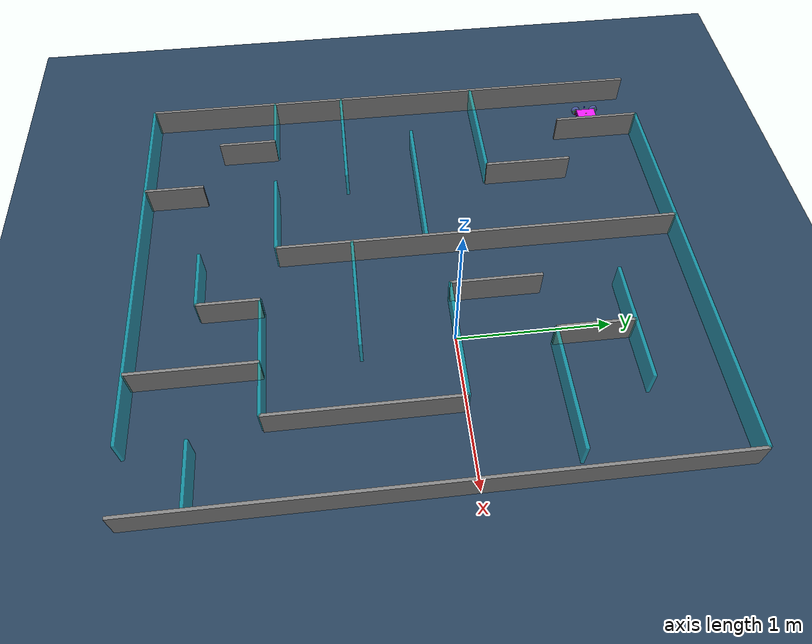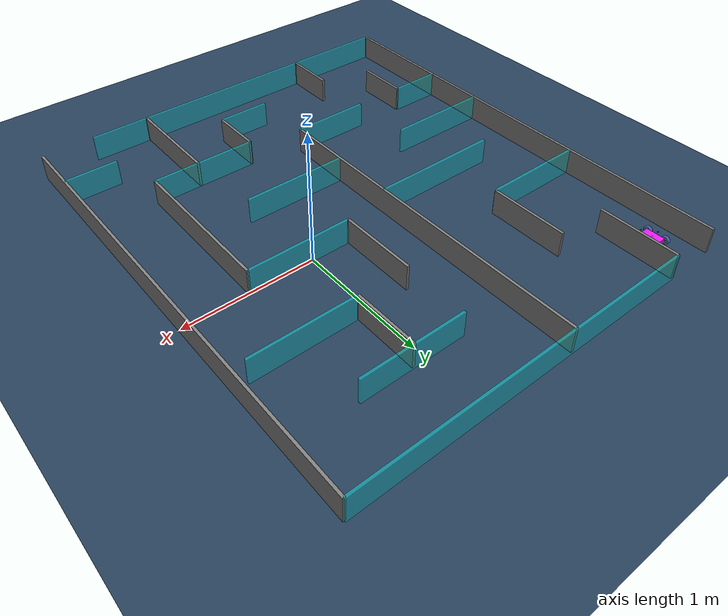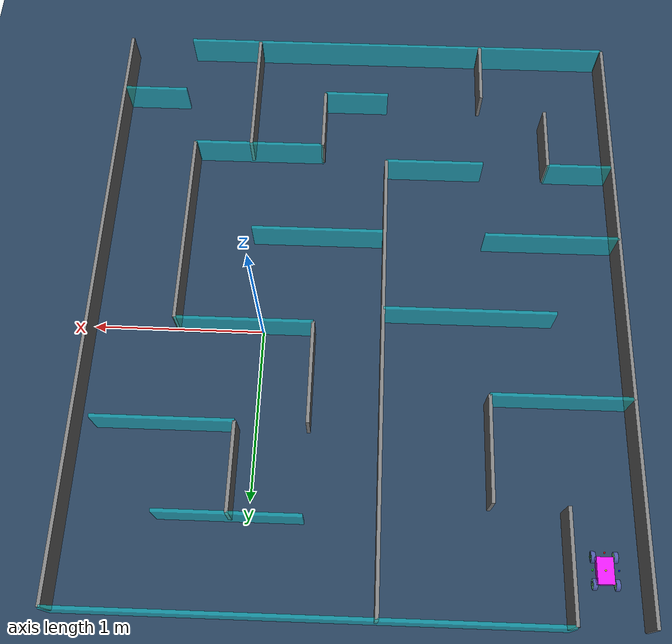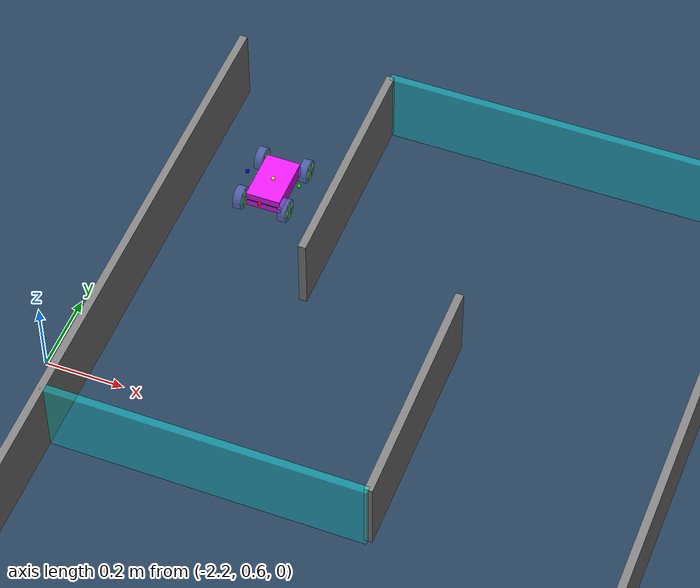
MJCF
<mujoco model="model scene">
  <include file="model.xml"/>

  <!-- Add some fluid viscosity to prevent the hanging box from jiggling forever -->
  <option viscosity="0.5"/>

  <statistic center="0 0 0.05" extent="0.3"/>

  <asset>
    <texture type="skybox" builtin="gradient" rgb1="0.3 0.5 0.7" rgb2="0 0 0" width="512" height="3072"/>
    <texture type="2d" name="groundplane" builtin="checker" mark="edge" rgb1="0.2 0.3 0.4" rgb2="0.1 0.2 0.3"
      markrgb="0.8 0.8 0.8" width="300" height="300"/>
    <material name="groundplane" texture="groundplane" texuniform="true" texrepeat="5 5" reflectance="0.2"/>
  </asset>

  <asset>
    <texture type="skybox" builtin="gradient" rgb1="0.6 0.8 1" rgb2="0 0 0" width="512" height="512"/>
    <material name="wall_mat" rgba="0.2 0.2 0.2 1"/>
    <material name="floor_mat" rgba="0.8 0.8 0.8 1"/>
  </asset>

  <worldbody>
    <light pos="0 0 1"/>
    <light pos="0 -0.2 1" dir="0 0.2 -0.8" directional="true"/>

    <body pos="0 0 0"   >

      <geom name="1" type="box" size="1.35 0.01 0.1 " pos="-0.35 1.6 0.1" rgba="0 1 2 0.4"/>
      <geom name="2" type="box" size="0.01 1.8 0.1 " pos="-2.1 -0.2 0.1" />
      <geom name="3" type="box" size="0.01 0.3 0.1 " pos="-1.7 1.3 0.1" />
      <geom name="5" type="box" size="0.01 0.3 0.1 " pos="-1.3 0.7 0.1" />
      <geom name="6" type="box" size="0.4 0.01 0.1 " pos="-1.7 0.4 0.1" rgba="0 1 2 0.4"/>
      <geom name="7" type="box" size="0.5 0.01 0.1 " pos="-1.2 -0.1 0.1" rgba="0 1 2 0.4"/>
      <geom name="8" type="box" size="0.01 1.35 0.1 " pos="-0.7 0.25 0.1" />
      <geom name="9" type="box" size="0.4 0.01 0.1 " pos="-1.7 -0.6 0.1" rgba="0 1 2 0.4"/>
      <geom name="10" type="box" size="0.3 0.01 0.1 " pos="-1 -1.1 0.1" rgba="0 1 2 0.4"/>
      <geom name="11" type="box" size="0.2 0.01 0.1 " pos="-1.9 -1.1 0.1" rgba="0 1 2 0.4"/>
      <geom name="12" type="box" size="0.01 0.2 0.1 " pos="-1.7 -1.3 0.1" />
      <geom name="13" type="box" size="1.35 0.01 0.1 " pos="-.75 -2 0.1" rgba="0 1 2 0.4"/>
      <geom name="14" type="box" size="0.01 0.2 0.1 " pos="-1.3 -1.8 0.1" />
      <geom name="15" type="box" size="0.4 0.01 0.1 " pos="-.3 -0.6 0.1" rgba="0 1 2 0.4"/>
      <geom name="16" type="box" size="0.2 0.01 0.1 " pos="-.5 -1.6 0.1" rgba="0 1 2 0.4"/>
      <geom name="17" type="box" size="0.01 0.2 0.1 " pos="-0.3 -1.4 0.1" />
      <geom name="18" type="box" size="0.4 0.01 0.1 " pos=".1 -1.2 0.1" rgba="0 1 2 0.4"/>
      <geom name="19" type="box" size="0.01 0.4 0.1 " pos="0.15 -1.6 0.1" />
      <geom name="20"   type="box" size="0.01 0.6 0.1 " pos="0.5 -0.6 0.1" />
      <geom name="21" type="box" size="0.4 0.01 0.1 " pos=".1 0 0.1" rgba="0 1 2 0.4"/>
      <geom name="22" type="box" size="0.01 0.3 0.1 " pos="-0.3 0.3 0.1" />
      <geom name="23" type="box" size="0.4 0.01 0.1 " pos=".1 1.1 0.1" rgba="0 1 2 0.4"/>
      <geom name="24" type="box" size="0.01 0.25 0.1 " pos="0.1 0.85 0.1" />
      <geom name="25" type="box" size="0.4 0.01 0.1 " pos=".5 0.6 0.1" rgba="0 1 2 0.4"/>
      <geom name="26" type="box" size="0.2 0.01 0.1 " pos=".8 -1.6 0.1" rgba="0 1 2 0.4"/>

      <geom type="box" size="0.01 1.8 0.1 " pos="1 -0.2 0.1" />

    </body>

  </worldbody>

</mujoco>

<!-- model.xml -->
<mujoco>
  <compiler autolimits="true"/>

  <asset>
    <texture name="grid" type="2d" builtin="checker" width="512" height="512" rgb1=".1 .2 .3" rgb2=".2 .3 .4"/>
    <material name="grid" texture="grid" texrepeat="1 1" texuniform="true" reflectance=".2"/>

  </asset>

  <default>
    <joint damping=".03" actuatorfrcrange="-0.5 0.5"/>
    <default class="wheel">
      <geom type="cylinder" size=".03 .01" rgba=".5 .5 1 0.5"/>
    </default>
    <default class="decor">
      <site type="box" rgba=".5 1 .5 0.8"/>
    </default>
  </default>

  <worldbody>
    <geom type="plane" size="5 5 .01" material="grid"/>
    <body name="car" pos="-1.9 1.3 .03" euler="0 0 -90">
      <freejoint/>
      <light name="top light" pos="0 0 2" mode="trackcom" diffuse=".4 .4 .4"/>
      <geom name="chasis" type="box" size="0.07 0.045 0.02" rgba="0.9 0.1 1 0.9"/>
      <body name="left wheel" pos="-.07 .06 0" zaxis="0 1 0">
        <joint name="left"/>
        <geom class="wheel"/>
        <site class="decor" size=".006 .025 .0115"/>
        <site class="decor" size=".025 .006 .0115"/>
      </body>
      <body name="right_wheel" pos="-.07 -.06 0" zaxis="0 1 0">
        <joint name="right"/>
        <geom class="wheel"/>
        <site class="decor" size=".006 .025 .0115"/>
        <site class="decor" size=".025 .006 .0115"/>
      </body>
            <!-- FRONT LEFT WHEEL with steering -->
      <body name="front_left_caster" pos=".07 .06 0">
       <!-- Добавляем маленький невидимый geom для массы -->
        <geom type="sphere" size="0.001" mass="0.001" rgba="0 0 0 0"/>
        <!-- Поворот влево/вправо (рулевое управление) -->
        <joint name="turn_front_left" type="hinge" axis="0 0 1"/>

        <body name="front_left_wheel" pos="0 0 0" zaxis="0 1 0">
          <!-- Вращение колеса -->
          <joint name="front_left" type="hinge" axis="0 1 0"/>
          <geom class="wheel"/>
          <site class="decor" size=".006 .025 .0115"/>
          <site class="decor" size=".025 .006 .0115"/>
        </body>
      </body>

      <!-- FRONT RIGHT WHEEL with steering -->
      <body name="front_right_caster" pos=".07 -.06 0">
        <geom type="sphere" size="0.001" mass="0.001" rgba="0 0 0 0"/>

        <!-- Поворот вправо/влево -->
        <joint name="turn_front_right" type="hinge" axis="0 0 1"/>

        <body name="front_right_wheel" pos="0 0 0" zaxis="0 1 0">
          <!-- Вращение колеса -->
          <joint name="front_right" type="hinge" axis="0 1 0"/>
          <geom class="wheel"/>
          <site class="decor" size=".006 .025 .0115"/>
          <site class="decor" size=".025 .006 .0115"/>
        </body>
      </body>

      <body name="fixed" pos="0.07 0 0" zaxis="1 0 0">
        <geom name="g4" type="box" size="0.001 0.045 0.001" rgba="0 0.5 0.5 1"/>
        <site name="s0" size="0.003" pos="0 0.045 0"/>
        <site name="s1" size="0.003" pos="0 -0.045 0"/>

     </body>

    <!-- Новый site для IMU -->
    <site name="imu" pos="0 0 0.02" size="0.005" rgba="1 1 0 1"/>
    <!-- Сенсоры расстояния / касания -->
    <site name="sensor_front" pos="0.09 0 0.02" size="0.005" rgba="1 0 0 1"/>
    <site name="sensor_left"  pos="0 0.07 0.02" size="0.005" rgba="0 1 0 1"/>
    <site name="sensor_right" pos="0 -0.07 0.02" size="0.005" rgba="0 0 1 1"/>

    </body>
  </worldbody>

  <tendon>
    <fixed name="forward">
      <joint joint="front_left" coef=".5"/>
      <joint joint="front_right" coef=".5"/>
    </fixed>
    <fixed name="turn">
      <joint joint="turn_front_left" coef="-1"/>
      <joint joint="turn_front_right" coef="1"/>
    </fixed>

    <fixed name="turn left wheel">
      <joint joint="front_left" coef="-0.5"/>
    </fixed>

    <fixed name="turn right wheel">
      <joint joint="front_right" coef="-0.5"/>
    </fixed>

  </tendon>

  <actuator>
    <motor name="forward" tendon="forward" ctrlrange="-100 100"/>
    <motor name="turn" tendon="turn" ctrlrange="-180 180"/>
    <!-- 🔧 Новые моторы для поворота передних колес -->
    <motor name="steer_left" joint="turn_front_left" ctrlrange="-0.5 0.5"/>
    <motor name="steer_right" joint="turn_front_right" ctrlrange="-0.5 0.5"/>

  </actuator>

   <sensor>
    <!-- Датчики нагрузки на двигатели -->
    <jointactuatorfrc name="right" joint="right"/>
    <jointactuatorfrc name="left" joint="left"/>

    <!-- Гироскоп -->
    <gyro name="gyro" site="imu"/>

    <!-- Акселерометр -->
    <accelerometer name="accel" site="imu"/>

    <!-- Лазерные дальномеры -->
    <rangefinder name="range_front" site="sensor_front"/>
    <rangefinder name="range_left" site="sensor_left"/>
    <rangefinder name="range_right" site="sensor_right"/>

    <!-- Сенсоры контакта (тач-сенсоры) -->
    <touch name="touch_front" site="sensor_front"/>
    <touch name="touch_left" site="sensor_left"/>
    <touch name="touch_right" site="sensor_right"/>
  </sensor>

</mujoco>
